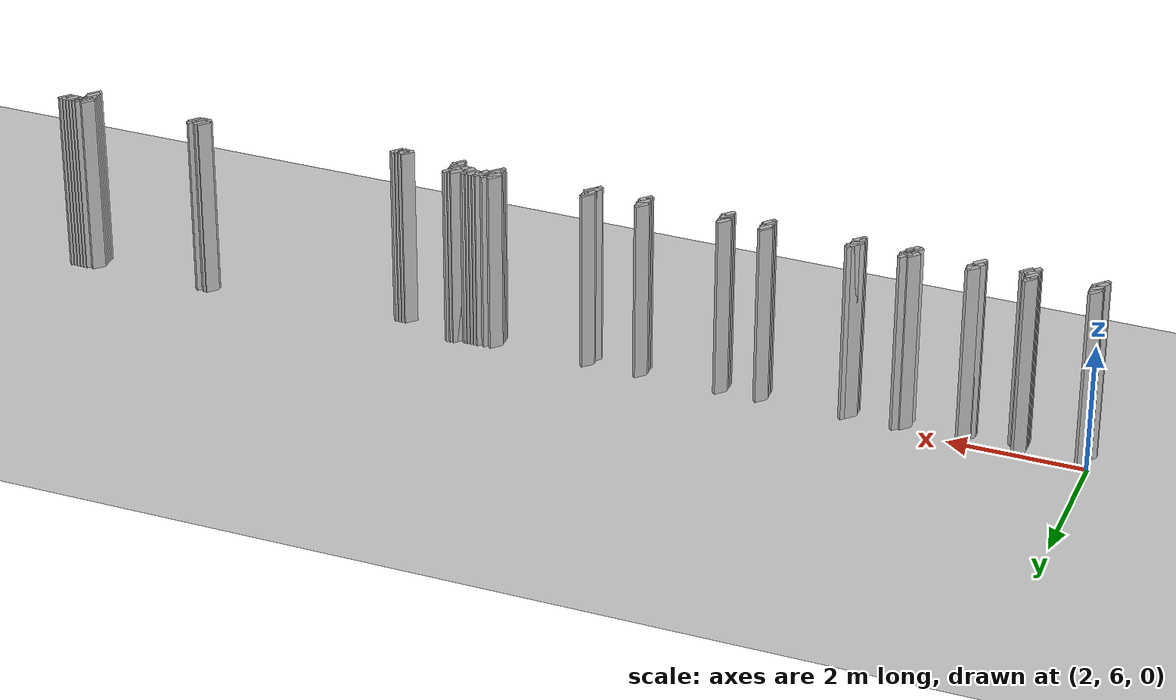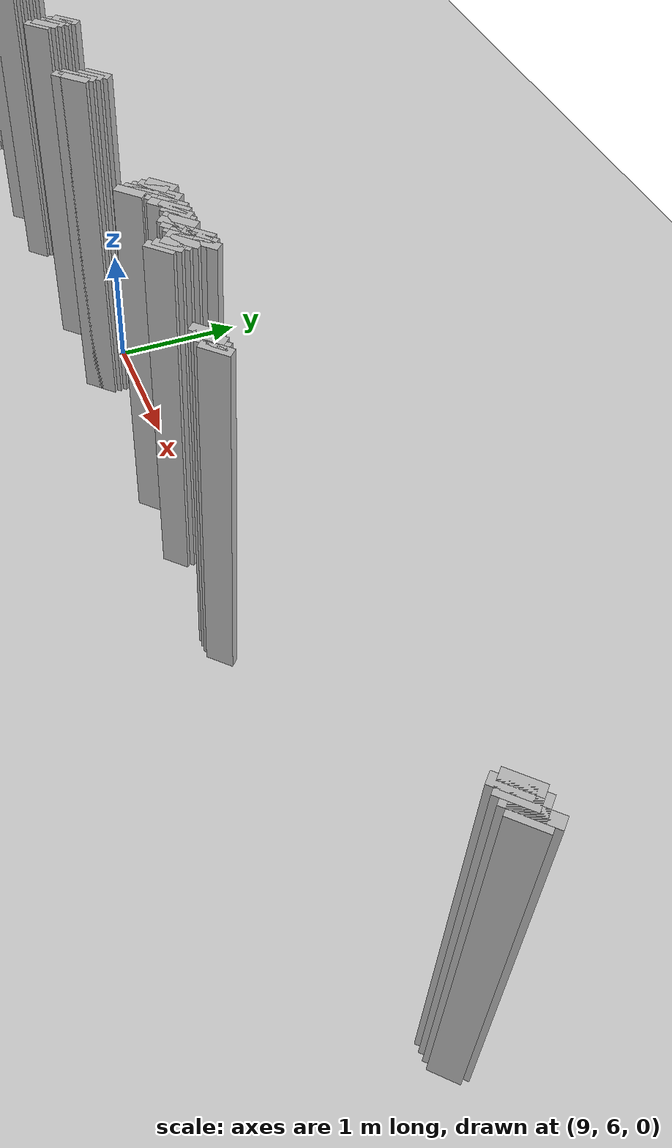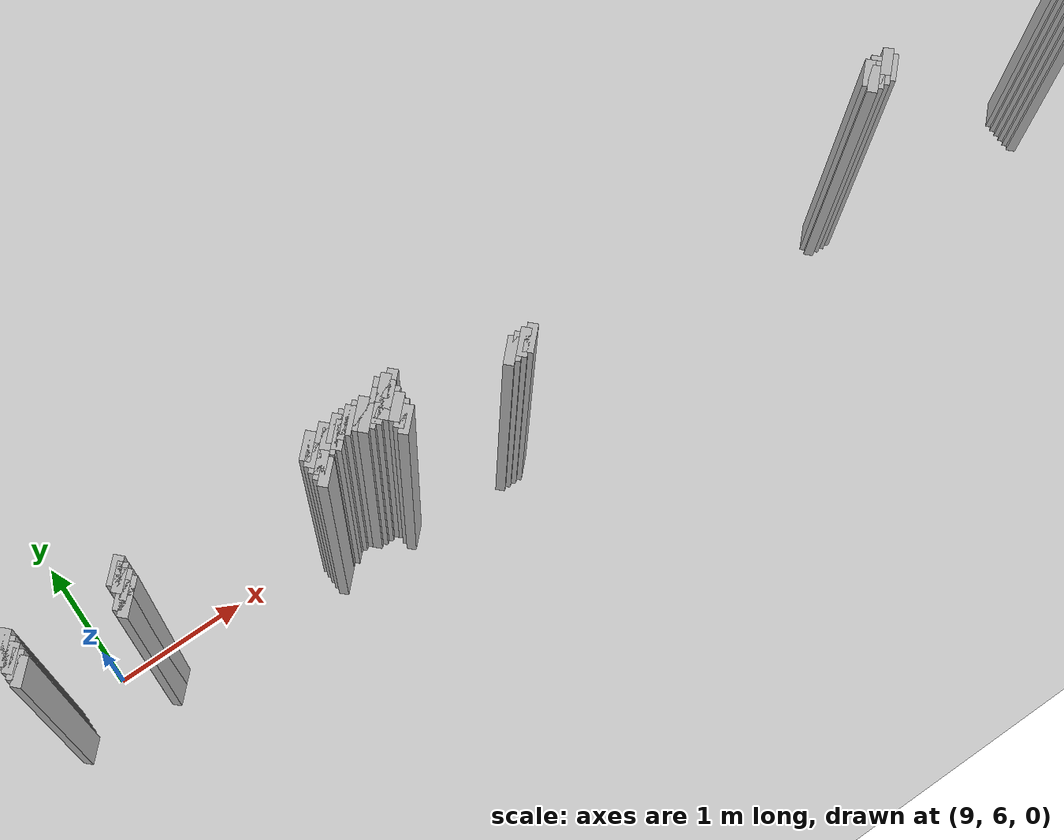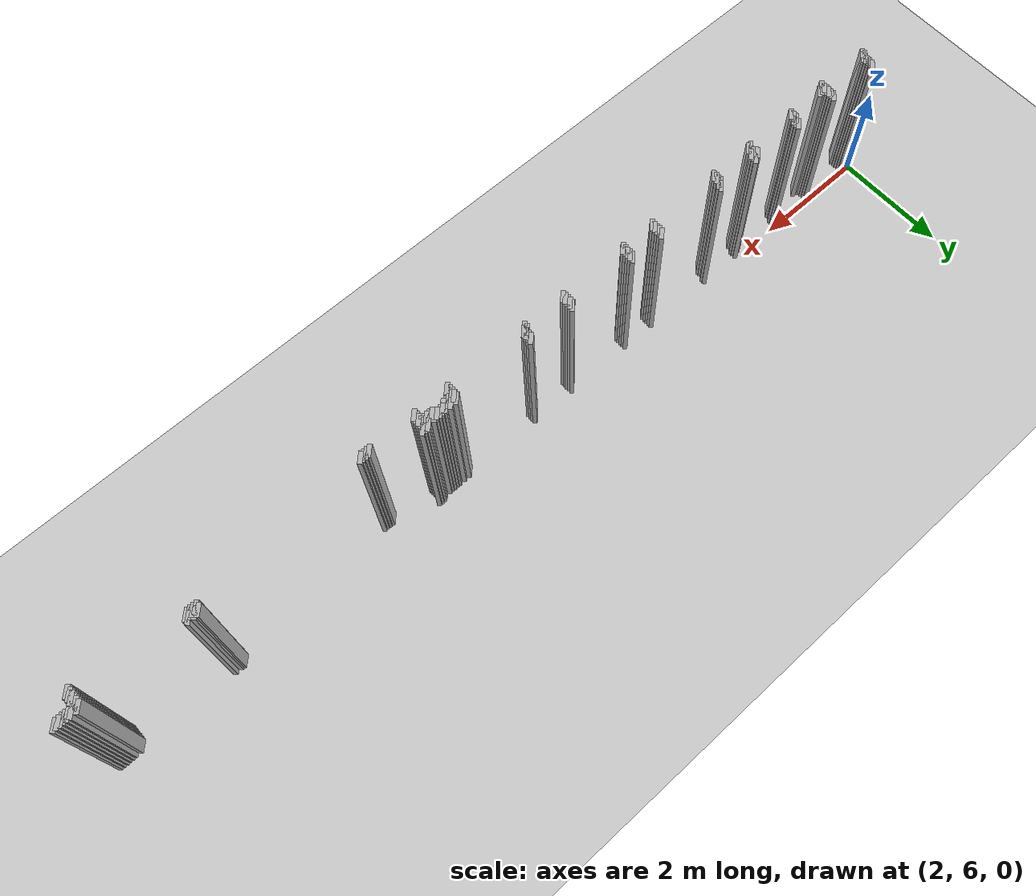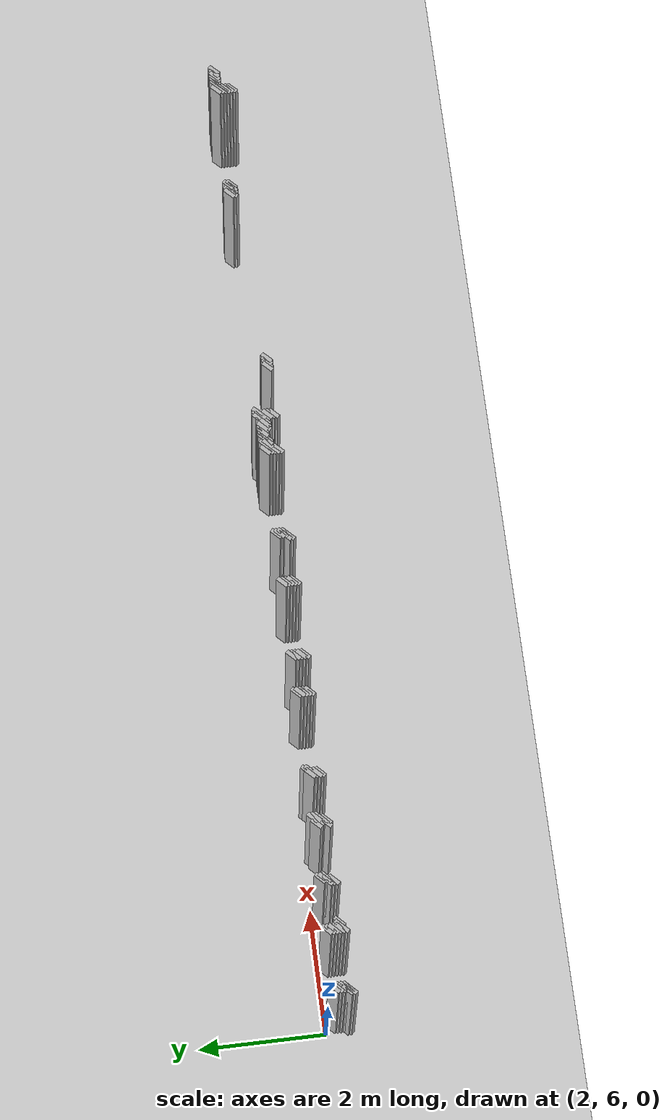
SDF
<sdf version="1.5">
 <world name="default">
  <include><uri>model://ground_plane</uri></include>
  <include><uri>model://sun</uri></include>
  <model name="grey_wall_2651">
   <static>1</static>
   <link name="link">
    <pose>11.3 5.95  1.4 0 0 -0.7853981633974483</pose>
    <collision name="collision">
     <geometry><box><size>0.07071067811865576 .2  2.8</size></box></geometry>
    </collision>
    <visual name="visual">
     <cast_shadows>0</cast_shadows>
     <geometry><box><size>0.07071067811865576 .2  2.8</size></box></geometry>
    </visual>
   </link>
  </model>
  <model name="grey_wall_2652">
   <static>1</static>
   <link name="link">
    <pose>11.350000000000001 5.95  1.4 0 0 -0.7853981633974483</pose>
    <collision name="collision">
     <geometry><box><size>0.07071067811865576 .2  2.8</size></box></geometry>
    </collision>
    <visual name="visual">
     <cast_shadows>0</cast_shadows>
     <geometry><box><size>0.07071067811865576 .2  2.8</size></box></geometry>
    </visual>
   </link>
  </model>
  <model name="grey_wall_2653">
   <static>1</static>
   <link name="link">
    <pose>11.4 5.95  1.4 0 0 -0.7853981633974483</pose>
    <collision name="collision">
     <geometry><box><size>0.07071067811865576 .2  2.8</size></box></geometry>
    </collision>
    <visual name="visual">
     <cast_shadows>0</cast_shadows>
     <geometry><box><size>0.07071067811865576 .2  2.8</size></box></geometry>
    </visual>
   </link>
  </model>
  <model name="grey_wall_2654">
   <static>1</static>
   <link name="link">
    <pose>15.200000000000001 5.95  1.4 0 0 -0.7853981633974483</pose>
    <collision name="collision">
     <geometry><box><size>0.07071067811865576 .2  2.8</size></box></geometry>
    </collision>
    <visual name="visual">
     <cast_shadows>0</cast_shadows>
     <geometry><box><size>0.07071067811865576 .2  2.8</size></box></geometry>
    </visual>
   </link>
  </model>
  <model name="grey_wall_2655">
   <static>1</static>
   <link name="link">
    <pose>15.25 5.95  1.4 0 0 -0.7853981633974483</pose>
    <collision name="collision">
     <geometry><box><size>0.07071067811865576 .2  2.8</size></box></geometry>
    </collision>
    <visual name="visual">
     <cast_shadows>0</cast_shadows>
     <geometry><box><size>0.07071067811865576 .2  2.8</size></box></geometry>
    </visual>
   </link>
  </model>
  <model name="grey_wall_2656">
   <static>1</static>
   <link name="link">
    <pose>15.350000000000001 5.95  1.4 0 0 -0.7853981633974483</pose>
    <collision name="collision">
     <geometry><box><size>0.07071067811865576 .2  2.8</size></box></geometry>
    </collision>
    <visual name="visual">
     <cast_shadows>0</cast_shadows>
     <geometry><box><size>0.07071067811865576 .2  2.8</size></box></geometry>
    </visual>
   </link>
  </model>
  <model name="grey_wall_2657">
   <static>1</static>
   <link name="link">
    <pose>17.05 5.95  1.4 0 0 -0.7853981633974838</pose>
    <collision name="collision">
     <geometry><box><size>0.07071067811865325 .2  2.8</size></box></geometry>
    </collision>
    <visual name="visual">
     <cast_shadows>0</cast_shadows>
     <geometry><box><size>0.07071067811865325 .2  2.8</size></box></geometry>
    </visual>
   </link>
  </model>
  <model name="grey_wall_2658">
   <static>1</static>
   <link name="link">
    <pose>17.150000000000002 5.95  1.4 0 0 -0.7853981633974838</pose>
    <collision name="collision">
     <geometry><box><size>0.07071067811865325 .2  2.8</size></box></geometry>
    </collision>
    <visual name="visual">
     <cast_shadows>0</cast_shadows>
     <geometry><box><size>0.07071067811865325 .2  2.8</size></box></geometry>
    </visual>
   </link>
  </model>
  <model name="grey_wall_2659">
   <static>1</static>
   <link name="link">
    <pose>17.2 5.95  1.4 0 0 -0.7853981633974838</pose>
    <collision name="collision">
     <geometry><box><size>0.07071067811865325 .2  2.8</size></box></geometry>
    </collision>
    <visual name="visual">
     <cast_shadows>0</cast_shadows>
     <geometry><box><size>0.07071067811865325 .2  2.8</size></box></geometry>
    </visual>
   </link>
  </model>
  <model name="grey_wall_2660">
   <static>1</static>
   <link name="link">
    <pose>17.25 5.95  1.4 0 0 -0.7853981633974838</pose>
    <collision name="collision">
     <geometry><box><size>0.07071067811865325 .2  2.8</size></box></geometry>
    </collision>
    <visual name="visual">
     <cast_shadows>0</cast_shadows>
     <geometry><box><size>0.07071067811865325 .2  2.8</size></box></geometry>
    </visual>
   </link>
  </model>
  <model name="grey_wall_2661">
   <static>1</static>
   <link name="link">
    <pose>17.3 5.95  1.4 0 0 -0.7853981633974838</pose>
    <collision name="collision">
     <geometry><box><size>0.07071067811865325 .2  2.8</size></box></geometry>
    </collision>
    <visual name="visual">
     <cast_shadows>0</cast_shadows>
     <geometry><box><size>0.07071067811865325 .2  2.8</size></box></geometry>
    </visual>
   </link>
  </model>
  <model name="grey_wall_2662">
   <static>1</static>
   <link name="link">
    <pose>17.35 5.95  1.4 0 0 -0.7853981633974838</pose>
    <collision name="collision">
     <geometry><box><size>0.07071067811865325 .2  2.8</size></box></geometry>
    </collision>
    <visual name="visual">
     <cast_shadows>0</cast_shadows>
     <geometry><box><size>0.07071067811865325 .2  2.8</size></box></geometry>
    </visual>
   </link>
  </model>
  <model name="grey_wall_2663">
   <static>1</static>
   <link name="link">
    <pose>17.400000000000002 5.95  1.4 0 0 -0.7853981633974838</pose>
    <collision name="collision">
     <geometry><box><size>0.07071067811865325 .2  2.8</size></box></geometry>
    </collision>
    <visual name="visual">
     <cast_shadows>0</cast_shadows>
     <geometry><box><size>0.07071067811865325 .2  2.8</size></box></geometry>
    </visual>
   </link>
  </model>
  <model name="grey_wall_2664">
   <static>1</static>
   <link name="link">
    <pose>2.1 5.9  1.4 0 0 -0.7853981633974572</pose>
    <collision name="collision">
     <geometry><box><size>0.07071067811865513 .2  2.8</size></box></geometry>
    </collision>
    <visual name="visual">
     <cast_shadows>0</cast_shadows>
     <geometry><box><size>0.07071067811865513 .2  2.8</size></box></geometry>
    </visual>
   </link>
  </model>
  <model name="grey_wall_2665">
   <static>1</static>
   <link name="link">
    <pose>3.0 5.9  1.4 0 0 -0.7853981633974572</pose>
    <collision name="collision">
     <geometry><box><size>0.07071067811865513 .2  2.8</size></box></geometry>
    </collision>
    <visual name="visual">
     <cast_shadows>0</cast_shadows>
     <geometry><box><size>0.07071067811865513 .2  2.8</size></box></geometry>
    </visual>
   </link>
  </model>
  <model name="grey_wall_2666">
   <static>1</static>
   <link name="link">
    <pose>3.8000000000000003 5.9  1.4 0 0 -0.7853981633974572</pose>
    <collision name="collision">
     <geometry><box><size>0.07071067811865513 .2  2.8</size></box></geometry>
    </collision>
    <visual name="visual">
     <cast_shadows>0</cast_shadows>
     <geometry><box><size>0.07071067811865513 .2  2.8</size></box></geometry>
    </visual>
   </link>
  </model>
  <model name="grey_wall_2667">
   <static>1</static>
   <link name="link">
    <pose>4.75 5.9  1.4 0 0 -0.7853981633974483</pose>
    <collision name="collision">
     <geometry><box><size>0.07071067811865576 .2  2.8</size></box></geometry>
    </collision>
    <visual name="visual">
     <cast_shadows>0</cast_shadows>
     <geometry><box><size>0.07071067811865576 .2  2.8</size></box></geometry>
    </visual>
   </link>
  </model>
  <model name="grey_wall_2668">
   <static>1</static>
   <link name="link">
    <pose>5.5 5.9  1.4 0 0 -0.7853981633974483</pose>
    <collision name="collision">
     <geometry><box><size>0.07071067811865576 .2  2.8</size></box></geometry>
    </collision>
    <visual name="visual">
     <cast_shadows>0</cast_shadows>
     <geometry><box><size>0.07071067811865576 .2  2.8</size></box></geometry>
    </visual>
   </link>
  </model>
  <model name="grey_wall_2669">
   <static>1</static>
   <link name="link">
    <pose>6.75 5.9  1.4 0 0 -0.7853981633974483</pose>
    <collision name="collision">
     <geometry><box><size>0.07071067811865576 .2  2.8</size></box></geometry>
    </collision>
    <visual name="visual">
     <cast_shadows>0</cast_shadows>
     <geometry><box><size>0.07071067811865576 .2  2.8</size></box></geometry>
    </visual>
   </link>
  </model>
  <model name="grey_wall_2670">
   <static>1</static>
   <link name="link">
    <pose>7.3500000000000005 5.9  1.4 0 0 -0.7853981633974483</pose>
    <collision name="collision">
     <geometry><box><size>0.07071067811865576 .2  2.8</size></box></geometry>
    </collision>
    <visual name="visual">
     <cast_shadows>0</cast_shadows>
     <geometry><box><size>0.07071067811865576 .2  2.8</size></box></geometry>
    </visual>
   </link>
  </model>
  <model name="grey_wall_2671">
   <static>1</static>
   <link name="link">
    <pose>8.55 5.9  1.4 0 0 -0.7853981633974483</pose>
    <collision name="collision">
     <geometry><box><size>0.07071067811865576 .2  2.8</size></box></geometry>
    </collision>
    <visual name="visual">
     <cast_shadows>0</cast_shadows>
     <geometry><box><size>0.07071067811865576 .2  2.8</size></box></geometry>
    </visual>
   </link>
  </model>
  <model name="grey_wall_2672">
   <static>1</static>
   <link name="link">
    <pose>9.35 5.9  1.4 0 0 -0.7853981633974483</pose>
    <collision name="collision">
     <geometry><box><size>0.07071067811865576 .2  2.8</size></box></geometry>
    </collision>
    <visual name="visual">
     <cast_shadows>0</cast_shadows>
     <geometry><box><size>0.07071067811865576 .2  2.8</size></box></geometry>
    </visual>
   </link>
  </model>
  <model name="grey_wall_2673">
   <static>1</static>
   <link name="link">
    <pose>10.75 5.9  1.4 0 0 -0.7853981633974483</pose>
    <collision name="collision">
     <geometry><box><size>0.07071067811865576 .2  2.8</size></box></geometry>
    </collision>
    <visual name="visual">
     <cast_shadows>0</cast_shadows>
     <geometry><box><size>0.07071067811865576 .2  2.8</size></box></geometry>
    </visual>
   </link>
  </model>
  <model name="grey_wall_2674">
   <static>1</static>
   <link name="link">
    <pose>10.850000000000001 5.9  1.4 0 0 -0.7853981633974483</pose>
    <collision name="collision">
     <geometry><box><size>0.07071067811865576 .2  2.8</size></box></geometry>
    </collision>
    <visual name="visual">
     <cast_shadows>0</cast_shadows>
     <geometry><box><size>0.07071067811865576 .2  2.8</size></box></geometry>
    </visual>
   </link>
  </model>
  <model name="grey_wall_2675">
   <static>1</static>
   <link name="link">
    <pose>10.950000000000001 5.9  1.4 0 0 -0.7853981633974483</pose>
    <collision name="collision">
     <geometry><box><size>0.07071067811865576 .2  2.8</size></box></geometry>
    </collision>
    <visual name="visual">
     <cast_shadows>0</cast_shadows>
     <geometry><box><size>0.07071067811865576 .2  2.8</size></box></geometry>
    </visual>
   </link>
  </model>
  <model name="grey_wall_2676">
   <static>1</static>
   <link name="link">
    <pose>11.0 5.9  1.4 0 0 -0.7853981633974483</pose>
    <collision name="collision">
     <geometry><box><size>0.07071067811865576 .2  2.8</size></box></geometry>
    </collision>
    <visual name="visual">
     <cast_shadows>0</cast_shadows>
     <geometry><box><size>0.07071067811865576 .2  2.8</size></box></geometry>
    </visual>
   </link>
  </model>
  <model name="grey_wall_2677">
   <static>1</static>
   <link name="link">
    <pose>11.05 5.9  1.4 0 0 -0.7853981633974483</pose>
    <collision name="collision">
     <geometry><box><size>0.07071067811865576 .2  2.8</size></box></geometry>
    </collision>
    <visual name="visual">
     <cast_shadows>0</cast_shadows>
     <geometry><box><size>0.07071067811865576 .2  2.8</size></box></geometry>
    </visual>
   </link>
  </model>
  <model name="grey_wall_2678">
   <static>1</static>
   <link name="link">
    <pose>11.100000000000001 5.9  1.4 0 0 -0.7853981633974483</pose>
    <collision name="collision">
     <geometry><box><size>0.07071067811865576 .2  2.8</size></box></geometry>
    </collision>
    <visual name="visual">
     <cast_shadows>0</cast_shadows>
     <geometry><box><size>0.07071067811865576 .2  2.8</size></box></geometry>
    </visual>
   </link>
  </model>
  <model name="grey_wall_2679">
   <static>1</static>
   <link name="link">
    <pose>11.15 5.9  1.4 0 0 -0.7853981633974483</pose>
    <collision name="collision">
     <geometry><box><size>0.07071067811865576 .2  2.8</size></box></geometry>
    </collision>
    <visual name="visual">
     <cast_shadows>0</cast_shadows>
     <geometry><box><size>0.07071067811865576 .2  2.8</size></box></geometry>
    </visual>
   </link>
  </model>
  <model name="grey_wall_2680">
   <static>1</static>
   <link name="link">
    <pose>11.25 5.9  1.4 0 0 -0.7853981633974483</pose>
    <collision name="collision">
     <geometry><box><size>0.07071067811865576 .2  2.8</size></box></geometry>
    </collision>
    <visual name="visual">
     <cast_shadows>0</cast_shadows>
     <geometry><box><size>0.07071067811865576 .2  2.8</size></box></geometry>
    </visual>
   </link>
  </model>
  <model name="grey_wall_2681">
   <static>1</static>
   <link name="link">
    <pose>11.350000000000001 5.9  1.4 0 0 -0.7853981633974483</pose>
    <collision name="collision">
     <geometry><box><size>0.07071067811865576 .2  2.8</size></box></geometry>
    </collision>
    <visual name="visual">
     <cast_shadows>0</cast_shadows>
     <geometry><box><size>0.07071067811865576 .2  2.8</size></box></geometry>
    </visual>
   </link>
  </model>
  <model name="grey_wall_2682">
   <static>1</static>
   <link name="link">
    <pose>15.200000000000001 5.9  1.4 0 0 -0.7853981633974483</pose>
    <collision name="collision">
     <geometry><box><size>0.07071067811865576 .2  2.8</size></box></geometry>
    </collision>
    <visual name="visual">
     <cast_shadows>0</cast_shadows>
     <geometry><box><size>0.07071067811865576 .2  2.8</size></box></geometry>
    </visual>
   </link>
  </model>
  <model name="grey_wall_2683">
   <static>1</static>
   <link name="link">
    <pose>15.25 5.9  1.4 0 0 -0.7853981633974483</pose>
    <collision name="collision">
     <geometry><box><size>0.07071067811865576 .2  2.8</size></box></geometry>
    </collision>
    <visual name="visual">
     <cast_shadows>0</cast_shadows>
     <geometry><box><size>0.07071067811865576 .2  2.8</size></box></geometry>
    </visual>
   </link>
  </model>
  <model name="grey_wall_2684">
   <static>1</static>
   <link name="link">
    <pose>15.3 5.9  1.4 0 0 -0.7853981633974483</pose>
    <collision name="collision">
     <geometry><box><size>0.07071067811865576 .2  2.8</size></box></geometry>
    </collision>
    <visual name="visual">
     <cast_shadows>0</cast_shadows>
     <geometry><box><size>0.07071067811865576 .2  2.8</size></box></geometry>
    </visual>
   </link>
  </model>
  <model name="grey_wall_2685">
   <static>1</static>
   <link name="link">
    <pose>15.350000000000001 5.9  1.4 0 0 -0.7853981633974483</pose>
    <collision name="collision">
     <geometry><box><size>0.07071067811865576 .2  2.8</size></box></geometry>
    </collision>
    <visual name="visual">
     <cast_shadows>0</cast_shadows>
     <geometry><box><size>0.07071067811865576 .2  2.8</size></box></geometry>
    </visual>
   </link>
  </model>
  <model name="grey_wall_2686">
   <static>1</static>
   <link name="link">
    <pose>17.05 5.9  1.4 0 0 -0.7853981633974838</pose>
    <collision name="collision">
     <geometry><box><size>0.07071067811865325 .2  2.8</size></box></geometry>
    </collision>
    <visual name="visual">
     <cast_shadows>0</cast_shadows>
     <geometry><box><size>0.07071067811865325 .2  2.8</size></box></geometry>
    </visual>
   </link>
  </model>
  <model name="grey_wall_2687">
   <static>1</static>
   <link name="link">
    <pose>2.1 5.8500000000000005  1.4 0 0 -0.7853981633974572</pose>
    <collision name="collision">
     <geometry><box><size>0.07071067811865513 .2  2.8</size></box></geometry>
    </collision>
    <visual name="visual">
     <cast_shadows>0</cast_shadows>
     <geometry><box><size>0.07071067811865513 .2  2.8</size></box></geometry>
    </visual>
   </link>
  </model>
  <model name="grey_wall_2688">
   <static>1</static>
   <link name="link">
    <pose>3.0 5.8500000000000005  1.4 0 0 -0.7853981633974572</pose>
    <collision name="collision">
     <geometry><box><size>0.07071067811865513 .2  2.8</size></box></geometry>
    </collision>
    <visual name="visual">
     <cast_shadows>0</cast_shadows>
     <geometry><box><size>0.07071067811865513 .2  2.8</size></box></geometry>
    </visual>
   </link>
  </model>
  <model name="grey_wall_2689">
   <static>1</static>
   <link name="link">
    <pose>3.8000000000000003 5.8500000000000005  1.4 0 0 -0.7853981633974572</pose>
    <collision name="collision">
     <geometry><box><size>0.07071067811865513 .2  2.8</size></box></geometry>
    </collision>
    <visual name="visual">
     <cast_shadows>0</cast_shadows>
     <geometry><box><size>0.07071067811865513 .2  2.8</size></box></geometry>
    </visual>
   </link>
  </model>
  <model name="grey_wall_2690">
   <static>1</static>
   <link name="link">
    <pose>4.65 5.8500000000000005  1.4 0 0 -0.7853981633974483</pose>
    <collision name="collision">
     <geometry><box><size>0.07071067811865576 .2  2.8</size></box></geometry>
    </collision>
    <visual name="visual">
     <cast_shadows>0</cast_shadows>
     <geometry><box><size>0.07071067811865576 .2  2.8</size></box></geometry>
    </visual>
   </link>
  </model>
  <model name="grey_wall_2691">
   <static>1</static>
   <link name="link">
    <pose>4.75 5.8500000000000005  1.4 0 0 -0.7853981633974483</pose>
    <collision name="collision">
     <geometry><box><size>0.07071067811865576 .2  2.8</size></box></geometry>
    </collision>
    <visual name="visual">
     <cast_shadows>0</cast_shadows>
     <geometry><box><size>0.07071067811865576 .2  2.8</size></box></geometry>
    </visual>
   </link>
  </model>
  <model name="grey_wall_2692">
   <static>1</static>
   <link name="link">
    <pose>5.45 5.8500000000000005  1.4 0 0 -0.7853981633974483</pose>
    <collision name="collision">
     <geometry><box><size>0.07071067811865576 .2  2.8</size></box></geometry>
    </collision>
    <visual name="visual">
     <cast_shadows>0</cast_shadows>
     <geometry><box><size>0.07071067811865576 .2  2.8</size></box></geometry>
    </visual>
   </link>
  </model>
  <model name="grey_wall_2693">
   <static>1</static>
   <link name="link">
    <pose>5.5 5.8500000000000005  1.4 0 0 -0.7853981633974483</pose>
    <collision name="collision">
     <geometry><box><size>0.07071067811865576 .2  2.8</size></box></geometry>
    </collision>
    <visual name="visual">
     <cast_shadows>0</cast_shadows>
     <geometry><box><size>0.07071067811865576 .2  2.8</size></box></geometry>
    </visual>
   </link>
  </model>
  <model name="grey_wall_2694">
   <static>1</static>
   <link name="link">
    <pose>6.75 5.8500000000000005  1.4 0 0 -0.7853981633974483</pose>
    <collision name="collision">
     <geometry><box><size>0.07071067811865576 .2  2.8</size></box></geometry>
    </collision>
    <visual name="visual">
     <cast_shadows>0</cast_shadows>
     <geometry><box><size>0.07071067811865576 .2  2.8</size></box></geometry>
    </visual>
   </link>
  </model>
  <model name="grey_wall_2695">
   <static>1</static>
   <link name="link">
    <pose>7.3500000000000005 5.8500000000000005  1.4 0 0 -0.7853981633974483</pose>
    <collision name="collision">
     <geometry><box><size>0.07071067811865576 .2  2.8</size></box></geometry>
    </collision>
    <visual name="visual">
     <cast_shadows>0</cast_shadows>
     <geometry><box><size>0.07071067811865576 .2  2.8</size></box></geometry>
    </visual>
   </link>
  </model>
  <model name="grey_wall_2696">
   <static>1</static>
   <link name="link">
    <pose>8.55 5.8500000000000005  1.4 0 0 -0.7853981633974483</pose>
    <collision name="collision">
     <geometry><box><size>0.07071067811865576 .2  2.8</size></box></geometry>
    </collision>
    <visual name="visual">
     <cast_shadows>0</cast_shadows>
     <geometry><box><size>0.07071067811865576 .2  2.8</size></box></geometry>
    </visual>
   </link>
  </model>
  <model name="grey_wall_2697">
   <static>1</static>
   <link name="link">
    <pose>9.35 5.8500000000000005  1.4 0 0 -0.7853981633974483</pose>
    <collision name="collision">
     <geometry><box><size>0.07071067811865576 .2  2.8</size></box></geometry>
    </collision>
    <visual name="visual">
     <cast_shadows>0</cast_shadows>
     <geometry><box><size>0.07071067811865576 .2  2.8</size></box></geometry>
    </visual>
   </link>
  </model>
  <model name="grey_wall_2698">
   <static>1</static>
   <link name="link">
    <pose>10.75 5.8500000000000005  1.4 0 0 -0.7853981633974483</pose>
    <collision name="collision">
     <geometry><box><size>0.07071067811865576 .2  2.8</size></box></geometry>
    </collision>
    <visual name="visual">
     <cast_shadows>0</cast_shadows>
     <geometry><box><size>0.07071067811865576 .2  2.8</size></box></geometry>
    </visual>
   </link>
  </model>
  <model name="grey_wall_2699">
   <static>1</static>
   <link name="link">
    <pose>10.850000000000001 5.8500000000000005  1.4 0 0 -0.7853981633974483</pose>
    <collision name="collision">
     <geometry><box><size>0.07071067811865576 .2  2.8</size></box></geometry>
    </collision>
    <visual name="visual">
     <cast_shadows>0</cast_shadows>
     <geometry><box><size>0.07071067811865576 .2  2.8</size></box></geometry>
    </visual>
   </link>
  </model>
  <model name="grey_wall_2700">
   <static>1</static>
   <link name="link">
    <pose>10.9 5.8500000000000005  1.4 0 0 -0.7853981633974483</pose>
    <collision name="collision">
     <geometry><box><size>0.07071067811865576 .2  2.8</size></box></geometry>
    </collision>
    <visual name="visual">
     <cast_shadows>0</cast_shadows>
     <geometry><box><size>0.07071067811865576 .2  2.8</size></box></geometry>
    </visual>
   </link>
  </model>
  <model name="grey_wall_2701">
   <static>1</static>
   <link name="link">
    <pose>10.950000000000001 5.8500000000000005  1.4 0 0 -0.7853981633974483</pose>
    <collision name="collision">
     <geometry><box><size>0.07071067811865576 .2  2.8</size></box></geometry>
    </collision>
    <visual name="visual">
     <cast_shadows>0</cast_shadows>
     <geometry><box><size>0.07071067811865576 .2  2.8</size></box></geometry>
    </visual>
   </link>
  </model>
  <model name="grey_wall_2702">
   <static>1</static>
   <link name="link">
    <pose>11.15 5.8500000000000005  1.4 0 0 -0.7853981633974483</pose>
    <collision name="collision">
     <geometry><box><size>0.07071067811865576 .2  2.8</size></box></geometry>
    </collision>
    <visual name="visual">
     <cast_shadows>0</cast_shadows>
     <geometry><box><size>0.07071067811865576 .2  2.8</size></box></geometry>
    </visual>
   </link>
  </model>
  <model name="grey_wall_2703">
   <static>1</static>
   <link name="link">
    <pose>11.200000000000001 5.8500000000000005  1.4 0 0 -0.7853981633974483</pose>
    <collision name="collision">
     <geometry><box><size>0.07071067811865576 .2  2.8</size></box></geometry>
    </collision>
    <visual name="visual">
     <cast_shadows>0</cast_shadows>
     <geometry><box><size>0.07071067811865576 .2  2.8</size></box></geometry>
    </visual>
   </link>
  </model>
  <model name="grey_wall_2704">
   <static>1</static>
   <link name="link">
    <pose>11.25 5.8500000000000005  1.4 0 0 -0.7853981633974483</pose>
    <collision name="collision">
     <geometry><box><size>0.07071067811865576 .2  2.8</size></box></geometry>
    </collision>
    <visual name="visual">
     <cast_shadows>0</cast_shadows>
     <geometry><box><size>0.07071067811865576 .2  2.8</size></box></geometry>
    </visual>
   </link>
  </model>
  <model name="grey_wall_2705">
   <static>1</static>
   <link name="link">
    <pose>11.3 5.8500000000000005  1.4 0 0 -0.7853981633974483</pose>
    <collision name="collision">
     <geometry><box><size>0.07071067811865576 .2  2.8</size></box></geometry>
    </collision>
    <visual name="visual">
     <cast_shadows>0</cast_shadows>
     <geometry><box><size>0.07071067811865576 .2  2.8</size></box></geometry>
    </visual>
   </link>
  </model>
  <model name="grey_wall_2706">
   <static>1</static>
   <link name="link">
    <pose>11.350000000000001 5.8500000000000005  1.4 0 0 -0.7853981633974483</pose>
    <collision name="collision">
     <geometry><box><size>0.07071067811865576 .2  2.8</size></box></geometry>
    </collision>
    <visual name="visual">
     <cast_shadows>0</cast_shadows>
     <geometry><box><size>0.07071067811865576 .2  2.8</size></box></geometry>
    </visual>
   </link>
  </model>
  <model name="grey_wall_2707">
   <static>1</static>
   <link name="link">
    <pose>17.05 5.8500000000000005  1.4 0 0 -0.7853981633974838</pose>
    <collision name="collision">
     <geometry><box><size>0.07071067811865325 .2  2.8</size></box></geometry>
    </collision>
    <visual name="visual">
     <cast_shadows>0</cast_shadows>
     <geometry><box><size>0.07071067811865325 .2  2.8</size></box></geometry>
    </visual>
   </link>
  </model>
  <model name="grey_wall_2708">
   <static>1</static>
   <link name="link">
    <pose>2.1 5.800000000000001  1.4 0 0 -0.7853981633974572</pose>
    <collision name="collision">
     <geometry><box><size>0.07071067811865513 .2  2.8</size></box></geometry>
    </collision>
    <visual name="visual">
     <cast_shadows>0</cast_shadows>
     <geometry><box><size>0.07071067811865513 .2  2.8</size></box></geometry>
    </visual>
   </link>
  </model>
  <model name="grey_wall_2709">
   <static>1</static>
   <link name="link">
    <pose>3.0 5.800000000000001  1.4 0 0 -0.7853981633974572</pose>
    <collision name="collision">
     <geometry><box><size>0.07071067811865513 .2  2.8</size></box></geometry>
    </collision>
    <visual name="visual">
     <cast_shadows>0</cast_shadows>
     <geometry><box><size>0.07071067811865513 .2  2.8</size></box></geometry>
    </visual>
   </link>
  </model>
  <model name="grey_wall_2710">
   <static>1</static>
   <link name="link">
    <pose>3.75 5.800000000000001  1.4 0 0 -0.7853981633974572</pose>
    <collision name="collision">
     <geometry><box><size>0.07071067811865513 .2  2.8</size></box></geometry>
    </collision>
    <visual name="visual">
     <cast_shadows>0</cast_shadows>
     <geometry><box><size>0.07071067811865513 .2  2.8</size></box></geometry>
    </visual>
   </link>
  </model>
  <model name="grey_wall_2711">
   <static>1</static>
   <link name="link">
    <pose>3.8000000000000003 5.800000000000001  1.4 0 0 -0.7853981633974572</pose>
    <collision name="collision">
     <geometry><box><size>0.07071067811865513 .2  2.8</size></box></geometry>
    </collision>
    <visual name="visual">
     <cast_shadows>0</cast_shadows>
     <geometry><box><size>0.07071067811865513 .2  2.8</size></box></geometry>
    </visual>
   </link>
  </model>
  <model name="grey_wall_2712">
   <static>1</static>
   <link name="link">
    <pose>4.7 5.800000000000001  1.4 0 0 -0.7853981633974483</pose>
    <collision name="collision">
     <geometry><box><size>0.07071067811865576 .2  2.8</size></box></geometry>
    </collision>
    <visual name="visual">
     <cast_shadows>0</cast_shadows>
     <geometry><box><size>0.07071067811865576 .2  2.8</size></box></geometry>
    </visual>
   </link>
  </model>
  <model name="grey_wall_2713">
   <static>1</static>
   <link name="link">
    <pose>4.75 5.800000000000001  1.4 0 0 -0.7853981633974483</pose>
    <collision name="collision">
     <geometry><box><size>0.07071067811865576 .2  2.8</size></box></geometry>
    </collision>
    <visual name="visual">
     <cast_shadows>0</cast_shadows>
     <geometry><box><size>0.07071067811865576 .2  2.8</size></box></geometry>
    </visual>
   </link>
  </model>
  <model name="grey_wall_2714">
   <static>1</static>
   <link name="link">
    <pose>5.45 5.800000000000001  1.4 0 0 -0.7853981633974483</pose>
    <collision name="collision">
     <geometry><box><size>0.07071067811865576 .2  2.8</size></box></geometry>
    </collision>
    <visual name="visual">
     <cast_shadows>0</cast_shadows>
     <geometry><box><size>0.07071067811865576 .2  2.8</size></box></geometry>
    </visual>
   </link>
  </model>
  <model name="grey_wall_2715">
   <static>1</static>
   <link name="link">
    <pose>6.75 5.800000000000001  1.4 0 0 -0.7853981633974483</pose>
    <collision name="collision">
     <geometry><box><size>0.07071067811865576 .2  2.8</size></box></geometry>
    </collision>
    <visual name="visual">
     <cast_shadows>0</cast_shadows>
     <geometry><box><size>0.07071067811865576 .2  2.8</size></box></geometry>
    </visual>
   </link>
  </model>
  <model name="grey_wall_2716">
   <static>1</static>
   <link name="link">
    <pose>7.3500000000000005 5.800000000000001  1.4 0 0 -0.7853981633974483</pose>
    <collision name="collision">
     <geometry><box><size>0.07071067811865576 .2  2.8</size></box></geometry>
    </collision>
    <visual name="visual">
     <cast_shadows>0</cast_shadows>
     <geometry><box><size>0.07071067811865576 .2  2.8</size></box></geometry>
    </visual>
   </link>
  </model>
  <model name="grey_wall_2717">
   <static>1</static>
   <link name="link">
    <pose>8.55 5.800000000000001  1.4 0 0 -0.7853981633974483</pose>
    <collision name="collision">
     <geometry><box><size>0.07071067811865576 .2  2.8</size></box></geometry>
    </collision>
    <visual name="visual">
     <cast_shadows>0</cast_shadows>
     <geometry><box><size>0.07071067811865576 .2  2.8</size></box></geometry>
    </visual>
   </link>
  </model>
  <model name="grey_wall_2718">
   <static>1</static>
   <link name="link">
    <pose>9.35 5.800000000000001  1.4 0 0 -0.7853981633974483</pose>
    <collision name="collision">
     <geometry><box><size>0.07071067811865576 .2  2.8</size></box></geometry>
    </collision>
    <visual name="visual">
     <cast_shadows>0</cast_shadows>
     <geometry><box><size>0.07071067811865576 .2  2.8</size></box></geometry>
    </visual>
   </link>
  </model>
  <model name="grey_wall_2719">
   <static>1</static>
   <link name="link">
    <pose>10.75 5.800000000000001  1.4 0 0 -0.7853981633974483</pose>
    <collision name="collision">
     <geometry><box><size>0.07071067811865576 .2  2.8</size></box></geometry>
    </collision>
    <visual name="visual">
     <cast_shadows>0</cast_shadows>
     <geometry><box><size>0.07071067811865576 .2  2.8</size></box></geometry>
    </visual>
   </link>
  </model>
  <model name="grey_wall_2720">
   <static>1</static>
   <link name="link">
    <pose>11.350000000000001 5.800000000000001  1.4 0 0 -0.7853981633974483</pose>
    <collision name="collision">
     <geometry><box><size>0.07071067811865576 .2  2.8</size></box></geometry>
    </collision>
    <visual name="visual">
     <cast_shadows>0</cast_shadows>
     <geometry><box><size>0.07071067811865576 .2  2.8</size></box></geometry>
    </visual>
   </link>
  </model>
  <model name="grey_wall_2721">
   <static>1</static>
   <link name="link">
    <pose>17.05 5.800000000000001  1.4 0 0 -0.7853981633974838</pose>
    <collision name="collision">
     <geometry><box><size>0.07071067811865325 .2  2.8</size></box></geometry>
    </collision>
    <visual name="visual">
     <cast_shadows>0</cast_shadows>
     <geometry><box><size>0.07071067811865325 .2  2.8</size></box></geometry>
    </visual>
   </link>
  </model>
  <model name="grey_wall_2722">
   <static>1</static>
   <link name="link">
    <pose>2.1 5.75  1.4 0 0 -0.7853981633974572</pose>
    <collision name="collision">
     <geometry><box><size>0.07071067811865513 .2  2.8</size></box></geometry>
    </collision>
    <visual name="visual">
     <cast_shadows>0</cast_shadows>
     <geometry><box><size>0.07071067811865513 .2  2.8</size></box></geometry>
    </visual>
   </link>
  </model>
  <model name="grey_wall_2723">
   <static>1</static>
   <link name="link">
    <pose>3.0 5.75  1.4 0 0 -0.7853981633974572</pose>
    <collision name="collision">
     <geometry><box><size>0.07071067811865513 .2  2.8</size></box></geometry>
    </collision>
    <visual name="visual">
     <cast_shadows>0</cast_shadows>
     <geometry><box><size>0.07071067811865513 .2  2.8</size></box></geometry>
    </visual>
   </link>
  </model>
  <model name="grey_wall_2724">
   <static>1</static>
   <link name="link">
    <pose>3.75 5.75  1.4 0 0 -0.7853981633974572</pose>
    <collision name="collision">
     <geometry><box><size>0.07071067811865513 .2  2.8</size></box></geometry>
    </collision>
    <visual name="visual">
     <cast_shadows>0</cast_shadows>
     <geometry><box><size>0.07071067811865513 .2  2.8</size></box></geometry>
    </visual>
   </link>
  </model>
  <model name="grey_wall_2725">
   <static>1</static>
   <link name="link">
    <pose>4.7 5.75  1.4 0 0 -0.7853981633974483</pose>
    <collision name="collision">
     <geometry><box><size>0.07071067811865576 .2  2.8</size></box></geometry>
    </collision>
    <visual name="visual">
     <cast_shadows>0</cast_shadows>
     <geometry><box><size>0.07071067811865576 .2  2.8</size></box></geometry>
    </visual>
   </link>
  </model>
  <model name="grey_wall_2726">
   <static>1</static>
   <link name="link">
    <pose>5.45 5.75  1.4 0 0 -0.7853981633974483</pose>
    <collision name="collision">
     <geometry><box><size>0.07071067811865576 .2  2.8</size></box></geometry>
    </collision>
    <visual name="visual">
     <cast_shadows>0</cast_shadows>
     <geometry><box><size>0.07071067811865576 .2  2.8</size></box></geometry>
    </visual>
   </link>
  </model>
  <model name="grey_wall_2727">
   <static>1</static>
   <link name="link">
    <pose>6.75 5.75  1.4 0 0 -0.7853981633974483</pose>
    <collision name="collision">
     <geometry><box><size>0.07071067811865576 .2  2.8</size></box></geometry>
    </collision>
    <visual name="visual">
     <cast_shadows>0</cast_shadows>
     <geometry><box><size>0.07071067811865576 .2  2.8</size></box></geometry>
    </visual>
   </link>
  </model>
  <model name="grey_wall_2728">
   <static>1</static>
   <link name="link">
    <pose>7.3500000000000005 5.75  1.4 0 0 -0.7853981633974483</pose>
    <collision name="collision">
     <geometry><box><size>0.07071067811865576 .2  2.8</size></box></geometry>
    </collision>
    <visual name="visual">
     <cast_shadows>0</cast_shadows>
     <geometry><box><size>0.07071067811865576 .2  2.8</size></box></geometry>
    </visual>
   </link>
  </model>
  <model name="grey_wall_2729">
   <static>1</static>
   <link name="link">
    <pose>8.55 5.75  1.4 0 0 -0.7853981633974483</pose>
    <collision name="collision">
     <geometry><box><size>0.07071067811865576 .2  2.8</size></box></geometry>
    </collision>
    <visual name="visual">
     <cast_shadows>0</cast_shadows>
     <geometry><box><size>0.07071067811865576 .2  2.8</size></box></geometry>
    </visual>
   </link>
  </model>
  <model name="grey_wall_2730">
   <static>1</static>
   <link name="link">
    <pose>9.3 5.75  1.4 0 0 -0.7853981633974483</pose>
    <collision name="collision">
     <geometry><box><size>0.07071067811865576 .2  2.8</size></box></geometry>
    </collision>
    <visual name="visual">
     <cast_shadows>0</cast_shadows>
     <geometry><box><size>0.07071067811865576 .2  2.8</size></box></geometry>
    </visual>
   </link>
  </model>
  <model name="grey_wall_2731">
   <static>1</static>
   <link name="link">
    <pose>9.35 5.75  1.4 0 0 -0.7853981633974483</pose>
    <collision name="collision">
     <geometry><box><size>0.07071067811865576 .2  2.8</size></box></geometry>
    </collision>
    <visual name="visual">
     <cast_shadows>0</cast_shadows>
     <geometry><box><size>0.07071067811865576 .2  2.8</size></box></geometry>
    </visual>
   </link>
  </model>
  <model name="grey_wall_2732">
   <static>1</static>
   <link name="link">
    <pose>10.75 5.75  1.4 0 0 -0.7853981633974483</pose>
    <collision name="collision">
     <geometry><box><size>0.07071067811865576 .2  2.8</size></box></geometry>
    </collision>
    <visual name="visual">
     <cast_shadows>0</cast_shadows>
     <geometry><box><size>0.07071067811865576 .2  2.8</size></box></geometry>
    </visual>
   </link>
  </model>
  <model name="grey_wall_2733">
   <static>1</static>
   <link name="link">
    <pose>11.350000000000001 5.75  1.4 0 0 -0.7853981633974483</pose>
    <collision name="collision">
     <geometry><box><size>0.07071067811865576 .2  2.8</size></box></geometry>
    </collision>
    <visual name="visual">
     <cast_shadows>0</cast_shadows>
     <geometry><box><size>0.07071067811865576 .2  2.8</size></box></geometry>
    </visual>
   </link>
  </model>
  <model name="grey_wall_2734">
   <static>1</static>
   <link name="link">
    <pose>17.05 5.75  1.4 0 0 -0.7853981633974838</pose>
    <collision name="collision">
     <geometry><box><size>0.07071067811865325 .2  2.8</size></box></geometry>
    </collision>
    <visual name="visual">
     <cast_shadows>0</cast_shadows>
     <geometry><box><size>0.07071067811865325 .2  2.8</size></box></geometry>
    </visual>
   </link>
  </model>
  <model name="grey_wall_2735">
   <static>1</static>
   <link name="link">
    <pose>2.0500000000000003 5.7  1.4 0 0 -0.7853981633974572</pose>
    <collision name="collision">
     <geometry><box><size>0.07071067811865513 .2  2.8</size></box></geometry>
    </collision>
    <visual name="visual">
     <cast_shadows>0</cast_shadows>
     <geometry><box><size>0.07071067811865513 .2  2.8</size></box></geometry>
    </visual>
   </link>
  </model>
  <model name="grey_wall_2736">
   <static>1</static>
   <link name="link">
    <pose>2.1 5.7  1.4 0 0 -0.7853981633974572</pose>
    <collision name="collision">
     <geometry><box><size>0.07071067811865513 .2  2.8</size></box></geometry>
    </collision>
    <visual name="visual">
     <cast_shadows>0</cast_shadows>
     <geometry><box><size>0.07071067811865513 .2  2.8</size></box></geometry>
    </visual>
   </link>
  </model>
  <model name="grey_wall_2737">
   <static>1</static>
   <link name="link">
    <pose>3.0 5.7  1.4 0 0 -0.7853981633974572</pose>
    <collision name="collision">
     <geometry><box><size>0.07071067811865513 .2  2.8</size></box></geometry>
    </collision>
    <visual name="visual">
     <cast_shadows>0</cast_shadows>
     <geometry><box><size>0.07071067811865513 .2  2.8</size></box></geometry>
    </visual>
   </link>
  </model>
  <model name="grey_wall_2738">
   <static>1</static>
   <link name="link">
    <pose>3.0500000000000003 5.7  1.4 0 0 -0.7853981633974572</pose>
    <collision name="collision">
     <geometry><box><size>0.07071067811865513 .2  2.8</size></box></geometry>
    </collision>
    <visual name="visual">
     <cast_shadows>0</cast_shadows>
     <geometry><box><size>0.07071067811865513 .2  2.8</size></box></geometry>
    </visual>
   </link>
  </model>
  <model name="grey_wall_2739">
   <static>1</static>
   <link name="link">
    <pose>3.1 5.7  1.4 0 0 -0.7853981633974572</pose>
    <collision name="collision">
     <geometry><box><size>0.07071067811865513 .2  2.8</size></box></geometry>
    </collision>
    <visual name="visual">
     <cast_shadows>0</cast_shadows>
     <geometry><box><size>0.07071067811865513 .2  2.8</size></box></geometry>
    </visual>
   </link>
  </model>
  <model name="grey_wall_2740">
   <static>1</static>
   <link name="link">
    <pose>3.75 5.7  1.4 0 0 -0.7853981633974572</pose>
    <collision name="collision">
     <geometry><box><size>0.07071067811865513 .2  2.8</size></box></geometry>
    </collision>
    <visual name="visual">
     <cast_shadows>0</cast_shadows>
     <geometry><box><size>0.07071067811865513 .2  2.8</size></box></geometry>
    </visual>
   </link>
  </model>
  <model name="grey_wall_2741">
   <static>1</static>
   <link name="link">
    <pose>4.65 5.7  1.4 0 0 -0.7853981633974483</pose>
    <collision name="collision">
     <geometry><box><size>0.07071067811865576 .2  2.8</size></box></geometry>
    </collision>
    <visual name="visual">
     <cast_shadows>0</cast_shadows>
     <geometry><box><size>0.07071067811865576 .2  2.8</size></box></geometry>
    </visual>
   </link>
  </model>
  <model name="grey_wall_2742">
   <static>1</static>
   <link name="link">
    <pose>4.7 5.7  1.4 0 0 -0.7853981633974483</pose>
    <collision name="collision">
     <geometry><box><size>0.07071067811865576 .2  2.8</size></box></geometry>
    </collision>
    <visual name="visual">
     <cast_shadows>0</cast_shadows>
     <geometry><box><size>0.07071067811865576 .2  2.8</size></box></geometry>
    </visual>
   </link>
  </model>
  <model name="grey_wall_2743">
   <static>1</static>
   <link name="link">
    <pose>5.45 5.7  1.4 0 0 -0.7853981633974483</pose>
    <collision name="collision">
     <geometry><box><size>0.07071067811865576 .2  2.8</size></box></geometry>
    </collision>
    <visual name="visual">
     <cast_shadows>0</cast_shadows>
     <geometry><box><size>0.07071067811865576 .2  2.8</size></box></geometry>
    </visual>
   </link>
  </model>
  <model name="grey_wall_2744">
   <static>1</static>
   <link name="link">
    <pose>6.75 5.7  1.4 0 0 -0.7853981633974483</pose>
    <collision name="collision">
     <geometry><box><size>0.07071067811865576 .2  2.8</size></box></geometry>
    </collision>
    <visual name="visual">
     <cast_shadows>0</cast_shadows>
     <geometry><box><size>0.07071067811865576 .2  2.8</size></box></geometry>
    </visual>
   </link>
  </model>
  <model name="grey_wall_2745">
   <static>1</static>
   <link name="link">
    <pose>7.3500000000000005 5.7  1.4 0 0 -0.7853981633974483</pose>
    <collision name="collision">
     <geometry><box><size>0.07071067811865576 .2  2.8</size></box></geometry>
    </collision>
    <visual name="visual">
     <cast_shadows>0</cast_shadows>
     <geometry><box><size>0.07071067811865576 .2  2.8</size></box></geometry>
    </visual>
   </link>
  </model>
  <model name="grey_wall_2746">
   <static>1</static>
   <link name="link">
    <pose>8.55 5.7  1.4 0 0 -0.7853981633974483</pose>
    <collision name="collision">
     <geometry><box><size>0.07071067811865576 .2  2.8</size></box></geometry>
    </collision>
    <visual name="visual">
     <cast_shadows>0</cast_shadows>
     <geometry><box><size>0.07071067811865576 .2  2.8</size></box></geometry>
    </visual>
   </link>
  </model>
  <model name="grey_wall_2747">
   <static>1</static>
   <link name="link">
    <pose>9.3 5.7  1.4 0 0 -0.7853981633974483</pose>
    <collision name="collision">
     <geometry><box><size>0.07071067811865576 .2  2.8</size></box></geometry>
    </collision>
    <visual name="visual">
     <cast_shadows>0</cast_shadows>
     <geometry><box><size>0.07071067811865576 .2  2.8</size></box></geometry>
    </visual>
   </link>
  </model>
  <model name="grey_wall_2748">
   <static>1</static>
   <link name="link">
    <pose>10.75 5.7  1.4 0 0 -0.7853981633974483</pose>
    <collision name="collision">
     <geometry><box><size>0.07071067811865576 .2  2.8</size></box></geometry>
    </collision>
    <visual name="visual">
     <cast_shadows>0</cast_shadows>
     <geometry><box><size>0.07071067811865576 .2  2.8</size></box></geometry>
    </visual>
   </link>
  </model>
  <model name="grey_wall_2749">
   <static>1</static>
   <link name="link">
    <pose>11.350000000000001 5.7  1.4 0 0 -0.7853981633974483</pose>
    <collision name="collision">
     <geometry><box><size>0.07071067811865576 .2  2.8</size></box></geometry>
    </collision>
    <visual name="visual">
     <cast_shadows>0</cast_shadows>
     <geometry><box><size>0.07071067811865576 .2  2.8</size></box></geometry>
    </visual>
   </link>
  </model>
  <model name="grey_wall_2750">
   <static>1</static>
   <link name="link">
    <pose>12.15 5.7  1.4 0 0 -0.7853981633974483</pose>
    <collision name="collision">
     <geometry><box><size>0.07071067811865576 .2  2.8</size></box></geometry>
    </collision>
    <visual name="visual">
     <cast_shadows>0</cast_shadows>
     <geometry><box><size>0.07071067811865576 .2  2.8</size></box></geometry>
    </visual>
   </link>
  </model>
  <model name="grey_wall_2751">
   <static>1</static>
   <link name="link">
    <pose>12.200000000000001 5.7  1.4 0 0 -0.7853981633974483</pose>
    <collision name="collision">
     <geometry><box><size>0.07071067811865576 .2  2.8</size></box></geometry>
    </collision>
    <visual name="visual">
     <cast_shadows>0</cast_shadows>
     <geometry><box><size>0.07071067811865576 .2  2.8</size></box></geometry>
    </visual>
   </link>
  </model>
  <model name="grey_wall_2752">
   <static>1</static>
   <link name="link">
    <pose>12.25 5.7  1.4 0 0 -0.7853981633974483</pose>
    <collision name="collision">
     <geometry><box><size>0.07071067811865576 .2  2.8</size></box></geometry>
    </collision>
    <visual name="visual">
     <cast_shadows>0</cast_shadows>
     <geometry><box><size>0.07071067811865576 .2  2.8</size></box></geometry>
    </visual>
   </link>
  </model>
  <model name="grey_wall_2753">
   <static>1</static>
   <link name="link">
    <pose>12.3 5.7  1.4 0 0 -0.7853981633974483</pose>
    <collision name="collision">
     <geometry><box><size>0.07071067811865576 .2  2.8</size></box></geometry>
    </collision>
    <visual name="visual">
     <cast_shadows>0</cast_shadows>
     <geometry><box><size>0.07071067811865576 .2  2.8</size></box></geometry>
    </visual>
   </link>
  </model>
  <model name="grey_wall_2754">
   <static>1</static>
   <link name="link">
    <pose>17.05 5.7  1.4 0 0 -0.7853981633974838</pose>
    <collision name="collision">
     <geometry><box><size>0.07071067811865325 .2  2.8</size></box></geometry>
    </collision>
    <visual name="visual">
     <cast_shadows>0</cast_shadows>
     <geometry><box><size>0.07071067811865325 .2  2.8</size></box></geometry>
    </visual>
   </link>
  </model>
  <model name="grey_wall_2755">
   <static>1</static>
   <link name="link">
    <pose>2.0500000000000003 5.65  1.4 0 0 -0.7853981633974572</pose>
    <collision name="collision">
     <geometry><box><size>0.07071067811865513 .2  2.8</size></box></geometry>
    </collision>
    <visual name="visual">
     <cast_shadows>0</cast_shadows>
     <geometry><box><size>0.07071067811865513 .2  2.8</size></box></geometry>
    </visual>
   </link>
  </model>
  <model name="grey_wall_2756">
   <static>1</static>
   <link name="link">
    <pose>3.0 5.65  1.4 0 0 -0.7853981633974572</pose>
    <collision name="collision">
     <geometry><box><size>0.07071067811865513 .2  2.8</size></box></geometry>
    </collision>
    <visual name="visual">
     <cast_shadows>0</cast_shadows>
     <geometry><box><size>0.07071067811865513 .2  2.8</size></box></geometry>
    </visual>
   </link>
  </model>
 </world>
</sdf>
